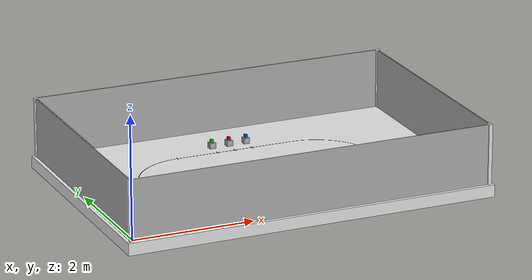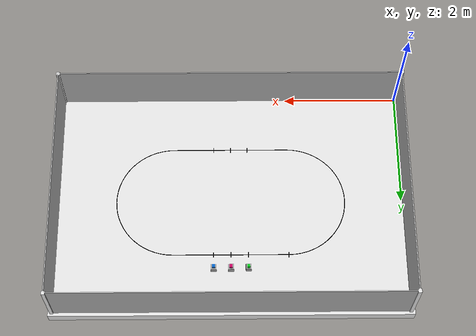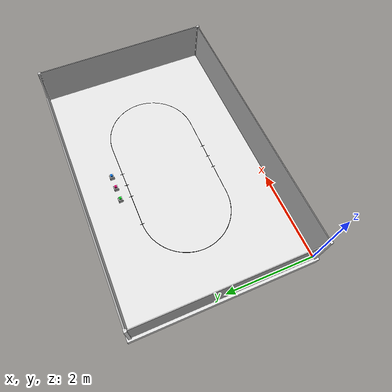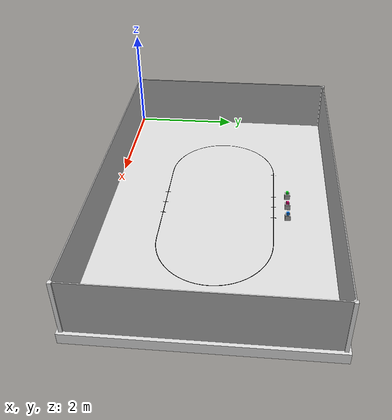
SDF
<sdf version="1.7">
 <world name="default">
  <light name="sun" type="directional">
   <pose>0 0 300 0 -0 0</pose>
   <diffuse>0.8 0.8 0.8 1</diffuse>
   <specular>0.2 0.2 0.2 1</specular>
   <attenuation><range>1000</range><constant>1</constant><linear>0</linear><quadratic>0</quadratic></attenuation>
   <direction>0 1 0</direction>
   <spot><inner_angle>0</inner_angle><outer_angle>0</outer_angle><falloff>0</falloff></spot>
  </light>
  <physics name="default_physics" default="0" type="ode">
   <max_step_size>0.001</max_step_size>
   <real_time_factor>1</real_time_factor>
   <real_time_update_rate>1000</real_time_update_rate>
  </physics>
  <scene><ambient>0.4 0.4 0.4 1</ambient><background>0.7 0.7 0.7 1</background><shadows>1</shadows></scene>
  <spherical_coordinates>
   <surface_model>EARTH_WGS84</surface_model>
   <latitude_deg>0</latitude_deg>
   <longitude_deg>0</longitude_deg>
   <elevation>0</elevation>
   <heading_deg>0</heading_deg>
  </spherical_coordinates>
  <gravity>0 0 -9.81</gravity>
  <magnetic_field>0 0 0</magnetic_field>
  <atmosphere type="adiabatic"/>
  <model name="map">
   <static>1</static>
   <link name="link">
    <collision name="collision">
     <geometry><mesh><uri>model://SIM2024JLURM/JLURM2.dae</uri></mesh></geometry>
    </collision>
    <visual name="visual"><geometry><mesh><uri>model://SIM2024JLURM/JLURM2.dae</uri></mesh></geometry></visual>
   </link>
  </model>
  <audio><device>default</device></audio>
  <light name="user_directional_light_0" type="directional">
   <pose>2.17836 1.53506 1 0 -0 0</pose>
   <diffuse>0.5 0.5 0.5 1</diffuse>
   <specular>0.1 0.1 0.1 1</specular>
   <direction>0.1 0.1 -0.9</direction>
   <attenuation>
    <range>20</range>
    <constant>0.5</constant>
    <linear>0.01</linear>
    <quadratic>0.001</quadratic>
   </attenuation>
   <spot><inner_angle>0</inner_angle><outer_angle>0</outer_angle><falloff>0</falloff></spot>
  </light>
  <light name="user_directional_light_1" type="directional">
   <pose>2.63952 1.3821 1 0 -0 0</pose>
   <diffuse>0.5 0.5 0.5 1</diffuse>
   <specular>0.1 0.1 0.1 1</specular>
   <direction>0.1 0.1 -0.9</direction>
   <attenuation>
    <range>20</range>
    <constant>0.5</constant>
    <linear>0.01</linear>
    <quadratic>0.001</quadratic>
   </attenuation>
   <spot><inner_angle>0</inner_angle><outer_angle>0</outer_angle><falloff>0</falloff></spot>
  </light>
  <light name="user_spot_light_0" type="spot">
   <pose>2.78538 2.47279 1 0 -0 0</pose>
   <diffuse>0.5 0.5 0.5 1</diffuse>
   <specular>0.1 0.1 0.1 1</specular>
   <direction>0 0 -1</direction>
   <attenuation>
    <range>20</range>
    <constant>0.5</constant>
    <linear>0.01</linear>
    <quadratic>0.001</quadratic>
   </attenuation>
   <cast_shadows>0</cast_shadows>
   <spot><inner_angle>0.6</inner_angle><outer_angle>0.8</outer_angle><falloff>1</falloff></spot>
  </light>
  <light name="user_spot_light_1" type="spot">
   <pose>2.76796 2.54012 1 0 -0 0</pose>
   <diffuse>0.5 0.5 0.5 1</diffuse>
   <specular>0.1 0.1 0.1 1</specular>
   <direction>0 0 -1</direction>
   <attenuation>
    <range>20</range>
    <constant>0.5</constant>
    <linear>0.01</linear>
    <quadratic>0.001</quadratic>
   </attenuation>
   <cast_shadows>0</cast_shadows>
   <spot><inner_angle>0.6</inner_angle><outer_angle>0.8</outer_angle><falloff>1</falloff></spot>
  </light>
  <light name="user_spot_light_2" type="spot">
   <pose>2.74124 2.68114 1 0 -0 0</pose>
   <diffuse>0.5 0.5 0.5 1</diffuse>
   <specular>0.1 0.1 0.1 1</specular>
   <direction>0 0 -1</direction>
   <attenuation>
    <range>20</range>
    <constant>0.5</constant>
    <linear>0.01</linear>
    <quadratic>0.001</quadratic>
   </attenuation>
   <cast_shadows>0</cast_shadows>
   <spot><inner_angle>0.6</inner_angle><outer_angle>0.8</outer_angle><falloff>1</falloff></spot>
  </light>
  <light name="user_spot_light_3" type="spot">
   <pose>3.00688 2.70613 1 0 -0 0</pose>
   <diffuse>0.5 0.5 0.5 1</diffuse>
   <specular>0.1 0.1 0.1 1</specular>
   <direction>0 0 -1</direction>
   <attenuation>
    <range>20</range>
    <constant>0.5</constant>
    <linear>0.01</linear>
    <quadratic>0.001</quadratic>
   </attenuation>
   <cast_shadows>0</cast_shadows>
   <spot><inner_angle>0.6</inner_angle><outer_angle>0.8</outer_angle><falloff>1</falloff></spot>
  </light>
  <light name="user_spot_light_4" type="spot">
   <pose>3.00813 2.68568 1 0 -0 0</pose>
   <diffuse>0.5 0.5 0.5 1</diffuse>
   <specular>0.1 0.1 0.1 1</specular>
   <direction>0 0 -1</direction>
   <attenuation>
    <range>20</range>
    <constant>0.5</constant>
    <linear>0.01</linear>
    <quadratic>0.001</quadratic>
   </attenuation>
   <cast_shadows>0</cast_shadows>
   <spot><inner_angle>0.6</inner_angle><outer_angle>0.8</outer_angle><falloff>1</falloff></spot>
  </light>
  <light name="user_spot_light_5" type="spot">
   <pose>3.00831 2.63854 1 0 -0 0</pose>
   <diffuse>0.5 0.5 0.5 1</diffuse>
   <specular>0.1 0.1 0.1 1</specular>
   <direction>0 0 -1</direction>
   <attenuation>
    <range>20</range>
    <constant>0.5</constant>
    <linear>0.01</linear>
    <quadratic>0.001</quadratic>
   </attenuation>
   <cast_shadows>0</cast_shadows>
   <spot><inner_angle>0.6</inner_angle><outer_angle>0.8</outer_angle><falloff>1</falloff></spot>
  </light>
  <light name="user_spot_light_6" type="spot">
   <pose>3.27761 2.78325 1 0 -0 0</pose>
   <diffuse>0.5 0.5 0.5 1</diffuse>
   <specular>0.1 0.1 0.1 1</specular>
   <direction>0 0 -1</direction>
   <attenuation>
    <range>20</range>
    <constant>0.5</constant>
    <linear>0.01</linear>
    <quadratic>0.001</quadratic>
   </attenuation>
   <cast_shadows>0</cast_shadows>
   <spot><inner_angle>0.6</inner_angle><outer_angle>2</outer_angle><falloff>1</falloff></spot>
  </light>
  <light name="user_spot_light_7" type="spot">
   <pose>3.30775 2.55666 1 0 -0 0</pose>
   <diffuse>0.5 0.5 0.5 1</diffuse>
   <specular>0.1 0.1 0.1 1</specular>
   <direction>0 0 -1</direction>
   <attenuation>
    <range>20</range>
    <constant>0.5</constant>
    <linear>0.01</linear>
    <quadratic>0.001</quadratic>
   </attenuation>
   <cast_shadows>0</cast_shadows>
   <spot><inner_angle>0.6</inner_angle><outer_angle>2</outer_angle><falloff>1</falloff></spot>
  </light>
  <light name="user_spot_light_8" type="spot">
   <pose>3.3061 2.48472 1 0 -0 0</pose>
   <diffuse>0.5 0.5 0.5 1</diffuse>
   <specular>0.1 0.1 0.1 1</specular>
   <direction>0 0 -1</direction>
   <attenuation>
    <range>20</range>
    <constant>0.5</constant>
    <linear>0.01</linear>
    <quadratic>0.001</quadratic>
   </attenuation>
   <cast_shadows>0</cast_shadows>
   <spot><inner_angle>0.6</inner_angle><outer_angle>2</outer_angle><falloff>1</falloff></spot>
  </light>
  <light name="user_spot_light_9" type="spot">
   <pose>3.30556 2.8974 1 0 -0 0</pose>
   <diffuse>0.5 0.5 0.5 1</diffuse>
   <specular>0.1 0.1 0.1 1</specular>
   <direction>0 0 -1</direction>
   <attenuation>
    <range>20</range>
    <constant>0.5</constant>
    <linear>0.01</linear>
    <quadratic>0.001</quadratic>
   </attenuation>
   <cast_shadows>0</cast_shadows>
   <spot><inner_angle>0.6</inner_angle><outer_angle>2</outer_angle><falloff>1</falloff></spot>
  </light>
  <light name="user_spot_light_10" type="spot">
   <pose>2.70071 2.82541 1 0 -0 0</pose>
   <diffuse>0.5 0.5 0.5 1</diffuse>
   <specular>0.1 0.1 0.1 1</specular>
   <direction>0 0 -1</direction>
   <attenuation>
    <range>20</range>
    <constant>0.5</constant>
    <linear>0.01</linear>
    <quadratic>0.001</quadratic>
   </attenuation>
   <cast_shadows>0</cast_shadows>
   <spot><inner_angle>0.6</inner_angle><outer_angle>1</outer_angle><falloff>1</falloff></spot>
  </light>
  <light name="user_spot_light_11" type="spot">
   <pose>2.71142 3.08882 1 0 -0 0</pose>
   <diffuse>0.5 0.5 0.5 1</diffuse>
   <specular>0.1 0.1 0.1 1</specular>
   <direction>0 0 -1</direction>
   <attenuation>
    <range>20</range>
    <constant>0.5</constant>
    <linear>0.01</linear>
    <quadratic>0.001</quadratic>
   </attenuation>
   <cast_shadows>0</cast_shadows>
   <spot><inner_angle>0.6</inner_angle><outer_angle>1</outer_angle><falloff>1</falloff></spot>
  </light>
  <light name="user_spot_light_12" type="spot">
   <pose>2.99138 3.07884 1 0 -0 0</pose>
   <diffuse>0.5 0.5 0.5 1</diffuse>
   <specular>0.1 0.1 0.1 1</specular>
   <direction>0 0 -1</direction>
   <attenuation>
    <range>20</range>
    <constant>0.5</constant>
    <linear>0.01</linear>
    <quadratic>0.001</quadratic>
   </attenuation>
   <cast_shadows>0</cast_shadows>
   <spot><inner_angle>0.6</inner_angle><outer_angle>1</outer_angle><falloff>1</falloff></spot>
  </light>
  <light name="user_spot_light_13" type="spot">
   <pose>2.98529 2.89417 1 0 -0 0</pose>
   <diffuse>0.5 0.5 0.5 1</diffuse>
   <specular>0.1 0.1 0.1 1</specular>
   <direction>0 0 -1</direction>
   <attenuation>
    <range>20</range>
    <constant>0.5</constant>
    <linear>0.01</linear>
    <quadratic>0.001</quadratic>
   </attenuation>
   <cast_shadows>0</cast_shadows>
   <spot><inner_angle>0.6</inner_angle><outer_angle>1</outer_angle><falloff>1</falloff></spot>
  </light>
  <light name="user_spot_light_14" type="spot">
   <pose>3.01961 2.86708 1 0 -0 0</pose>
   <diffuse>0.5 0.5 0.5 1</diffuse>
   <specular>0.1 0.1 0.1 1</specular>
   <direction>0 0 -1</direction>
   <attenuation>
    <range>20</range>
    <constant>0.5</constant>
    <linear>0.01</linear>
    <quadratic>0.001</quadratic>
   </attenuation>
   <cast_shadows>0</cast_shadows>
   <spot><inner_angle>0.6</inner_angle><outer_angle>1</outer_angle><falloff>1</falloff></spot>
  </light>
  <light name="user_spot_light_15" type="spot">
   <pose>3.29581 2.73219 1 0 -0 0</pose>
   <diffuse>0.5 0.5 0.5 1</diffuse>
   <specular>0.1 0.1 0.1 1</specular>
   <direction>0 0 -1</direction>
   <attenuation>
    <range>20</range>
    <constant>0.5</constant>
    <linear>0.01</linear>
    <quadratic>0.001</quadratic>
   </attenuation>
   <cast_shadows>0</cast_shadows>
   <spot><inner_angle>0.6</inner_angle><outer_angle>1</outer_angle><falloff>1</falloff></spot>
  </light>
  <light name="user_spot_light_16" type="spot">
   <pose>2.72567 2.80396 1 0 -0 0</pose>
   <diffuse>0.5 0.5 0.5 1</diffuse>
   <specular>0.1 0.1 0.1 1</specular>
   <direction>0 0 -1</direction>
   <attenuation>
    <range>20</range>
    <constant>0.5</constant>
    <linear>0.01</linear>
    <quadratic>0.001</quadratic>
   </attenuation>
   <cast_shadows>0</cast_shadows>
   <spot><inner_angle>0.6</inner_angle><outer_angle>1</outer_angle><falloff>1</falloff></spot>
  </light>
  <light name="user_spot_light_17" type="spot">
   <pose>3.01389 2.91253 1 0 -0 0</pose>
   <diffuse>0.5 0.5 0.5 1</diffuse>
   <specular>0.1 0.1 0.1 1</specular>
   <direction>0 0 -1</direction>
   <attenuation>
    <range>20</range>
    <constant>0.5</constant>
    <linear>0.01</linear>
    <quadratic>0.001</quadratic>
   </attenuation>
   <cast_shadows>0</cast_shadows>
   <spot><inner_angle>0.6</inner_angle><outer_angle>1</outer_angle><falloff>1</falloff></spot>
  </light>
 </world>
</sdf>
